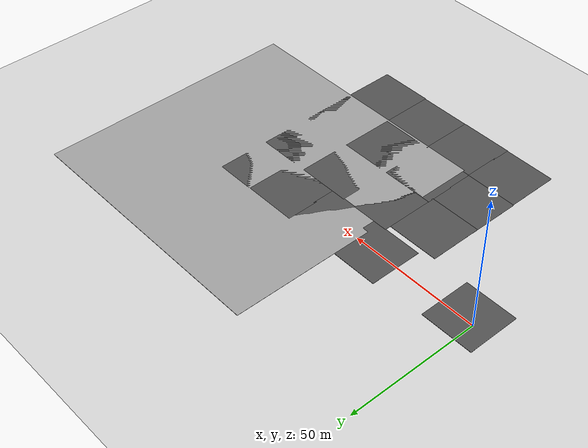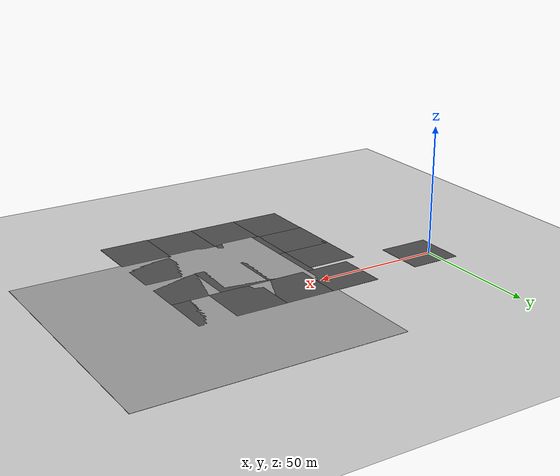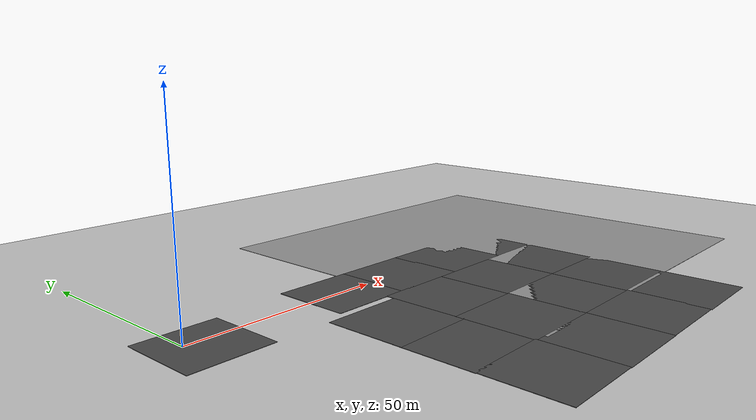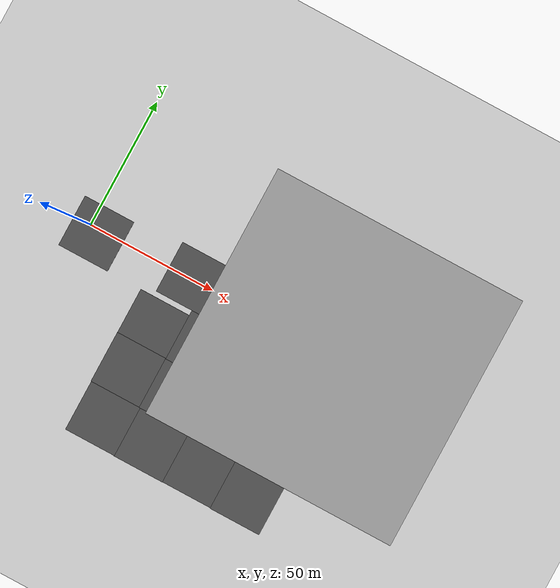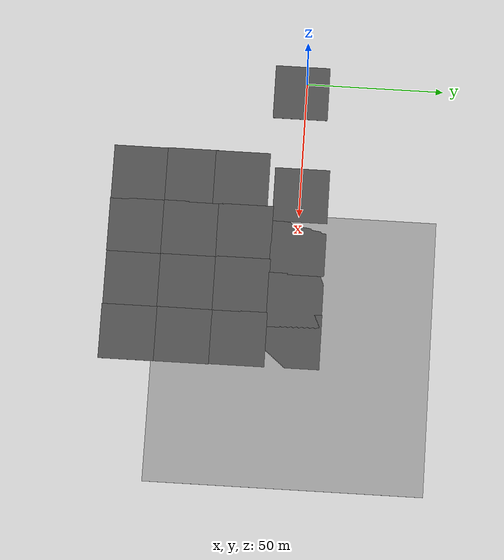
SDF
<sdf version="1.6">
 <world name="default">
  <model name="ground_plane">
   <static>1</static>
   <link name="link">
    <collision name="collision">
     <geometry><plane><normal>0 0 1</normal><size>100 100</size></plane></geometry>
     <surface><friction><ode><mu>100</mu><mu2>50</mu2></ode></friction></surface>
    </collision>
    <visual name="visual">
     <cast_shadows>0</cast_shadows>
     <geometry><plane><normal>0 0 1</normal><size>100 100</size></plane></geometry>
     <material>
      <script><uri>file://media/materials/scripts/gazebo.material</uri><name>Gazebo/Grey</name></script>
     </material>
    </visual>
   </link>
  </model>
  <model name="ground_plane_1">
   <static>1</static>
   <link name="link">
    <collision name="collision">
     <geometry><plane><normal>0 0 1</normal><size>100 100</size></plane></geometry>
     <surface><friction><ode><mu>100</mu><mu2>50</mu2></ode></friction></surface>
    </collision>
    <visual name="visual">
     <cast_shadows>0</cast_shadows>
     <geometry><plane><normal>0 0 1</normal><size>100 100</size></plane></geometry>
     <material>
      <script><uri>file://media/materials/scripts/gazebo.material</uri><name>Gazebo/Grey</name></script>
     </material>
    </visual>
   </link>
   <pose>99.5974 -0.193372 0 0 -0 0</pose>
  </model>
  <model name="asphalt_plane">
   <static>1</static>
   <link name="link">
    <collision name="collision"><geometry><box><size>20 20 0.1</size></box></geometry></collision>
    <visual name="visual">
     <cast_shadows>0</cast_shadows>
     <geometry><box><size>20 20 0.1</size></box></geometry>
     <material>
      <script>
       <uri>model://asphalt_plane/materials/scripts</uri>
       <uri>model://asphalt_plane/materials/textures</uri>
       <name>vrc/asphalt</name>
      </script>
     </material>
    </visual>
   </link>
   <pose>3.33156 -1.84021 0 0 -0 0</pose>
  </model>
  <model name="asphalt_plane_1">
   <static>1</static>
   <link name="link">
    <collision name="collision"><geometry><box><size>20 20 0.1</size></box></geometry></collision>
    <visual name="visual">
     <cast_shadows>0</cast_shadows>
     <geometry><box><size>20 20 0.1</size></box></geometry>
     <material>
      <script>
       <uri>model://asphalt_plane/materials/scripts</uri>
       <uri>model://asphalt_plane/materials/textures</uri>
       <name>vrc/asphalt</name>
      </script>
     </material>
    </visual>
   </link>
   <pose>42.0356 0.233967 0 0 -0 0</pose>
  </model>
  <model name="asphalt_plane_2">
   <static>1</static>
   <link name="link">
    <collision name="collision"><geometry><box><size>20 20 0.1</size></box></geometry></collision>
    <visual name="visual">
     <cast_shadows>0</cast_shadows>
     <geometry><box><size>20 20 0.1</size></box></geometry>
     <material>
      <script>
       <uri>model://asphalt_plane/materials/scripts</uri>
       <uri>model://asphalt_plane/materials/textures</uri>
       <name>vrc/asphalt</name>
      </script>
     </material>
    </visual>
   </link>
   <pose>61.7054 0.220693 0 0 -0 0</pose>
  </model>
  <model name="asphalt_plane_3">
   <static>1</static>
   <link name="link">
    <collision name="collision"><geometry><box><size>20 20 0.1</size></box></geometry></collision>
    <visual name="visual">
     <cast_shadows>0</cast_shadows>
     <geometry><box><size>20 20 0.1</size></box></geometry>
     <material>
      <script>
       <uri>model://asphalt_plane/materials/scripts</uri>
       <uri>model://asphalt_plane/materials/textures</uri>
       <name>vrc/asphalt</name>
      </script>
     </material>
    </visual>
   </link>
   <pose>81.1824 0.271411 0 0 -0 0</pose>
  </model>
  <model name="asphalt_plane_4">
   <static>1</static>
   <link name="link">
    <collision name="collision"><geometry><box><size>20 20 0.1</size></box></geometry></collision>
    <visual name="visual">
     <cast_shadows>0</cast_shadows>
     <geometry><box><size>20 20 0.1</size></box></geometry>
     <material>
      <script>
       <uri>model://asphalt_plane/materials/scripts</uri>
       <uri>model://asphalt_plane/materials/textures</uri>
       <name>vrc/asphalt</name>
      </script>
     </material>
    </visual>
   </link>
   <pose>95.9371 0.404804 0 0 -0 0</pose>
  </model>
  <model name="asphalt_plane_5">
   <static>1</static>
   <link name="link">
    <collision name="collision"><geometry><box><size>20 20 0.1</size></box></geometry></collision>
    <visual name="visual">
     <cast_shadows>0</cast_shadows>
     <geometry><box><size>20 20 0.1</size></box></geometry>
     <material>
      <script>
       <uri>model://asphalt_plane/materials/scripts</uri>
       <uri>model://asphalt_plane/materials/textures</uri>
       <name>vrc/asphalt</name>
      </script>
     </material>
    </visual>
   </link>
   <pose>76.2872 -19.4057 0 0 -0 0</pose>
  </model>
  <model name="asphalt_plane_6">
   <static>1</static>
   <link name="link">
    <collision name="collision"><geometry><box><size>20 20 0.1</size></box></geometry></collision>
    <visual name="visual">
     <cast_shadows>0</cast_shadows>
     <geometry><box><size>20 20 0.1</size></box></geometry>
     <material>
      <script>
       <uri>model://asphalt_plane/materials/scripts</uri>
       <uri>model://asphalt_plane/materials/textures</uri>
       <name>vrc/asphalt</name>
      </script>
     </material>
    </visual>
   </link>
   <pose>96.0441 -19.3476 0 0 -0 0</pose>
  </model>
  <model name="asphalt_plane_7">
   <static>1</static>
   <link name="link">
    <collision name="collision"><geometry><box><size>20 20 0.1</size></box></geometry></collision>
    <visual name="visual">
     <cast_shadows>0</cast_shadows>
     <geometry><box><size>20 20 0.1</size></box></geometry>
     <material>
      <script>
       <uri>model://asphalt_plane/materials/scripts</uri>
       <uri>model://asphalt_plane/materials/textures</uri>
       <name>vrc/asphalt</name>
      </script>
     </material>
    </visual>
   </link>
   <pose>56.6679 -19.5287 0 0 -0 0</pose>
  </model>
  <model name="asphalt_plane_8">
   <static>1</static>
   <link name="link">
    <collision name="collision"><geometry><box><size>20 20 0.1</size></box></geometry></collision>
    <visual name="visual">
     <cast_shadows>0</cast_shadows>
     <geometry><box><size>20 20 0.1</size></box></geometry>
     <material>
      <script>
       <uri>model://asphalt_plane/materials/scripts</uri>
       <uri>model://asphalt_plane/materials/textures</uri>
       <name>vrc/asphalt</name>
      </script>
     </material>
    </visual>
   </link>
   <pose>56.5724 -39.4429 0 0 -0 0</pose>
  </model>
  <model name="asphalt_plane_9">
   <static>1</static>
   <link name="link">
    <collision name="collision"><geometry><box><size>20 20 0.1</size></box></geometry></collision>
    <visual name="visual">
     <cast_shadows>0</cast_shadows>
     <geometry><box><size>20 20 0.1</size></box></geometry>
     <material>
      <script>
       <uri>model://asphalt_plane/materials/scripts</uri>
       <uri>model://asphalt_plane/materials/textures</uri>
       <name>vrc/asphalt</name>
      </script>
     </material>
    </visual>
   </link>
   <pose>76.212 -39.3626 0 0 -0 0</pose>
  </model>
  <model name="asphalt_plane_10">
   <static>1</static>
   <link name="link">
    <collision name="collision"><geometry><box><size>20 20 0.1</size></box></geometry></collision>
    <visual name="visual">
     <cast_shadows>0</cast_shadows>
     <geometry><box><size>20 20 0.1</size></box></geometry>
     <material>
      <script>
       <uri>model://asphalt_plane/materials/scripts</uri>
       <uri>model://asphalt_plane/materials/textures</uri>
       <name>vrc/asphalt</name>
      </script>
     </material>
    </visual>
   </link>
   <pose>96.1723 -39.2223 0 0 -0 0</pose>
  </model>
  <model name="asphalt_plane_11">
   <static>1</static>
   <link name="link">
    <collision name="collision"><geometry><box><size>20 20 0.1</size></box></geometry></collision>
    <visual name="visual">
     <cast_shadows>0</cast_shadows>
     <geometry><box><size>20 20 0.1</size></box></geometry>
     <material>
      <script>
       <uri>model://asphalt_plane/materials/scripts</uri>
       <uri>model://asphalt_plane/materials/textures</uri>
       <name>vrc/asphalt</name>
      </script>
     </material>
    </visual>
   </link>
   <pose>36.8655 -39.37 0 0 -0 0</pose>
  </model>
  <model name="asphalt_plane_12">
   <static>1</static>
   <link name="link">
    <collision name="collision"><geometry><box><size>20 20 0.1</size></box></geometry></collision>
    <visual name="visual">
     <cast_shadows>0</cast_shadows>
     <geometry><box><size>20 20 0.1</size></box></geometry>
     <material>
      <script>
       <uri>model://asphalt_plane/materials/scripts</uri>
       <uri>model://asphalt_plane/materials/textures</uri>
       <name>vrc/asphalt</name>
      </script>
     </material>
    </visual>
   </link>
   <pose>36.9078 -21.7842 0 0 -0 0</pose>
  </model>
  <model name="asphalt_plane_17">
   <static>1</static>
   <link name="link">
    <collision name="collision"><geometry><box><size>20 20 0.1</size></box></geometry></collision>
    <visual name="visual">
     <cast_shadows>0</cast_shadows>
     <geometry><box><size>20 20 0.1</size></box></geometry>
     <material>
      <script>
       <uri>model://asphalt_plane/materials/scripts</uri>
       <uri>model://asphalt_plane/materials/textures</uri>
       <name>vrc/asphalt</name>
      </script>
     </material>
    </visual>
   </link>
   <pose>96.22 -59.1851 0 0 -0 0</pose>
  </model>
  <model name="asphalt_plane_20">
   <static>1</static>
   <link name="link">
    <collision name="collision"><geometry><box><size>20 20 0.1</size></box></geometry></collision>
    <visual name="visual">
     <cast_shadows>0</cast_shadows>
     <geometry><box><size>20 20 0.1</size></box></geometry>
     <material>
      <script>
       <uri>model://asphalt_plane/materials/scripts</uri>
       <uri>model://asphalt_plane/materials/textures</uri>
       <name>vrc/asphalt</name>
      </script>
     </material>
    </visual>
   </link>
   <pose>37.0339 -58.9228 0 0 -0 0</pose>
  </model>
  <model name="asphalt_plane_21">
   <static>1</static>
   <link name="link">
    <collision name="collision"><geometry><box><size>20 20 0.1</size></box></geometry></collision>
    <visual name="visual">
     <cast_shadows>0</cast_shadows>
     <geometry><box><size>20 20 0.1</size></box></geometry>
     <material>
      <script>
       <uri>model://asphalt_plane/materials/scripts</uri>
       <uri>model://asphalt_plane/materials/textures</uri>
       <name>vrc/asphalt</name>
      </script>
     </material>
    </visual>
   </link>
   <pose>56.6852 -59.0691 0 0 -0 0</pose>
  </model>
  <model name="asphalt_plane_22">
   <static>1</static>
   <link name="link">
    <collision name="collision"><geometry><box><size>20 20 0.1</size></box></geometry></collision>
    <visual name="visual">
     <cast_shadows>0</cast_shadows>
     <geometry><box><size>20 20 0.1</size></box></geometry>
     <material>
      <script>
       <uri>model://asphalt_plane/materials/scripts</uri>
       <uri>model://asphalt_plane/materials/textures</uri>
       <name>vrc/asphalt</name>
      </script>
     </material>
    </visual>
   </link>
   <pose>76.6506 -58.9767 0 0 -0 0</pose>
  </model>
 </world>
</sdf>
